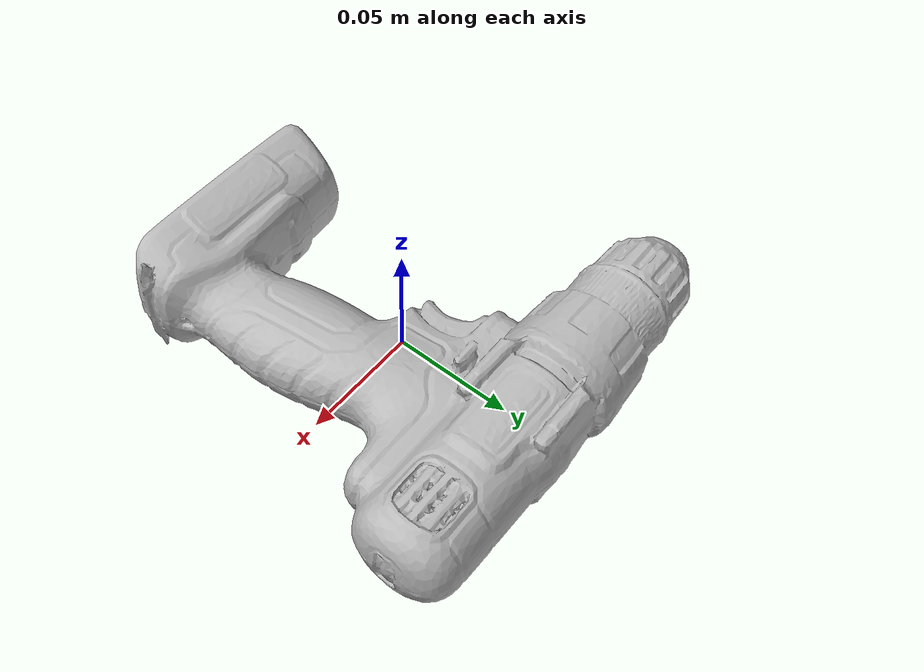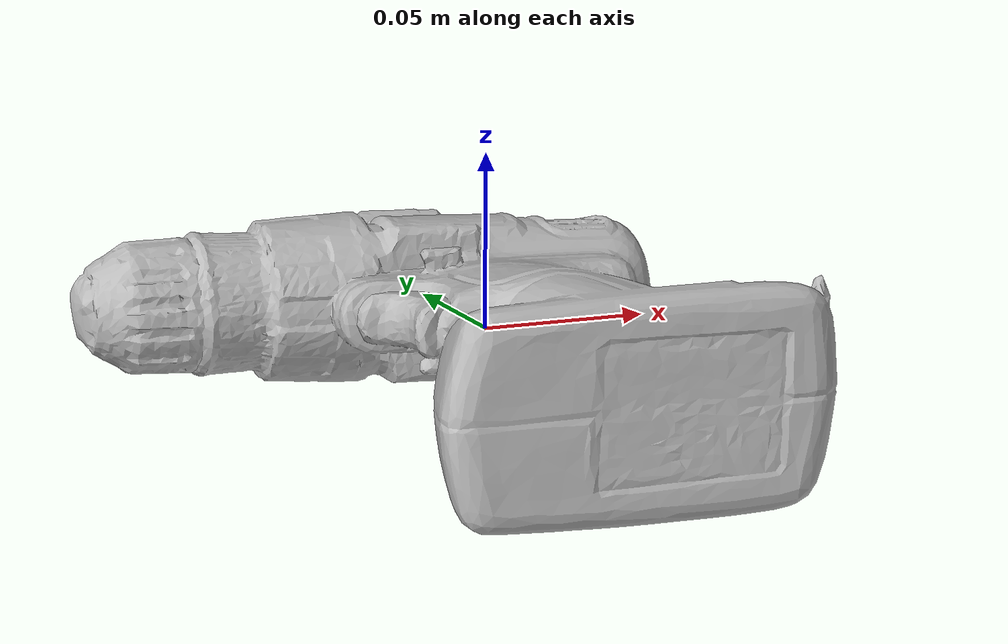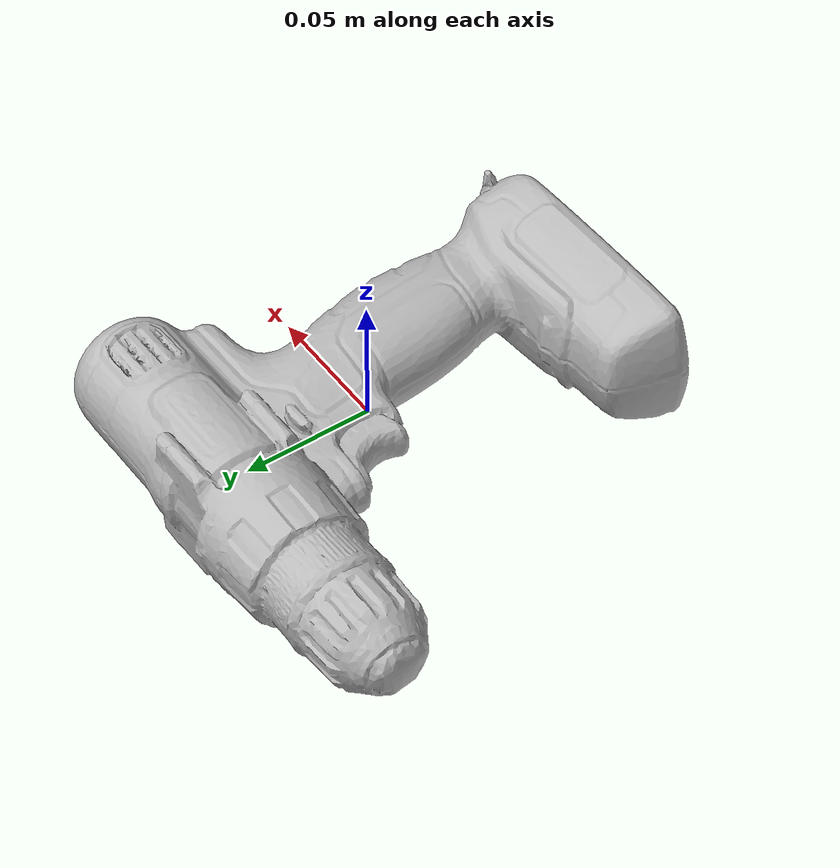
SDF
<?xml version='1.0'?>
<sdf version="1.4">
  <model name="power_drill">
    <static>false</static>
    <link name="link">
      <inertial>
        <pose>-0.030714691255337507 0.024350845730285495 0.02356763398968421 -2.086149117989621 -1.5309771458518984 0.6822464871470098</pose>
        <mass>0.0005808968085666661</mass>
        <inertia>
          <ixx>3.1058012590273494e-06</ixx>
          <ixy>-6.063427395307717e-23</ixy>
          <ixz>-2.221703917876514e-22</ixz>
          <iyy>2.3564289011284853e-06</iyy>
          <iyz>-1.743075631141687e-22</iyz>
          <izz>9.038816388046967e-07</izz>
        </inertia>
      </inertial>
      <collision name="collision">
        <geometry>
          <mesh>
            <!-- Use a downsampled mesh for collisions -->
            <uri>textured.obj</uri>
	        </mesh>
        </geometry>
        <surface>
      </surface>
      </collision>
      <visual name="visual">
        <geometry>
          <mesh>
            <uri>textured.obj</uri>
	        </mesh>
        </geometry>
      </visual>
    </link>
  </model>
</sdf>
